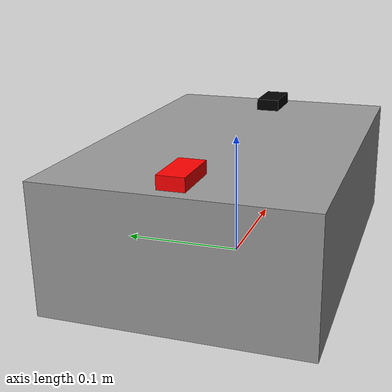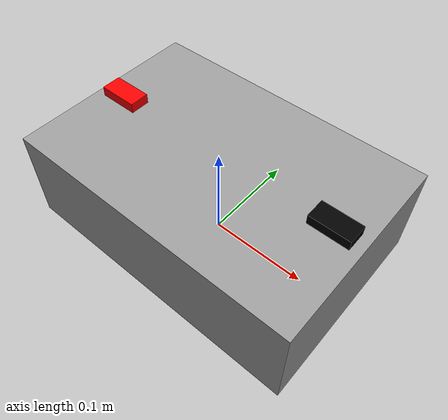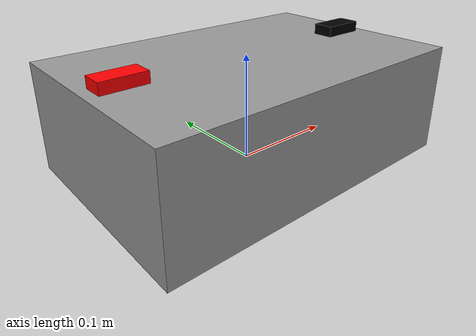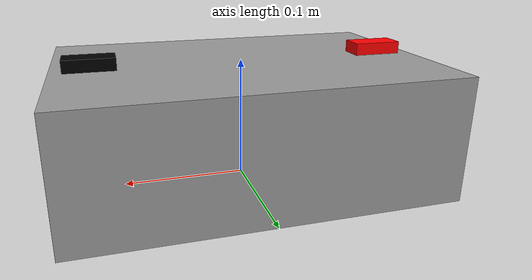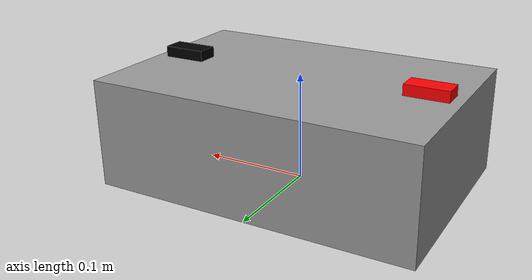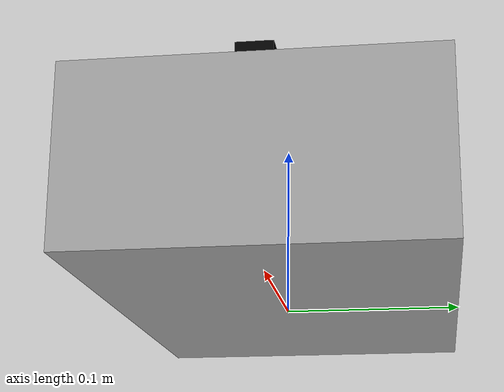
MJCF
<mujoco model="battery_module">
    <worldbody>
        <body name="battery_module" pos="0 0 0">
            <!-- Main grey metal body -->
            <geom name="battery_module_body" type="box" pos="0 0 0.05" size="0.15 0.10 0.05" rgba="0.6 0.6 0.6 1" mass="15.0" friction="1 0.005 0.0001" condim="4"/>

            <!-- Left handle (red) -->
            <geom name="battery_module_handle_left" type="box" pos="-0.12 0 0.1" size="0.02 0.01 0.01" rgba="1 0 0 1" mass="0.2" friction="1 0.005 0.0001" condim="4"/>

            <!-- Right handle (black) -->
            <geom name="battery_module_handle_right" type="box" pos="0.12 0 0.1" size="0.02 0.01 0.01" rgba="0 0 0 1" mass="0.2" friction="1 0.005 0.0001" condim="4"/>

            <!-- Joint to allow free movement -->
            <joint name="battery_module_joint" type="free"/>
        </body>
    </worldbody>
</mujoco>
